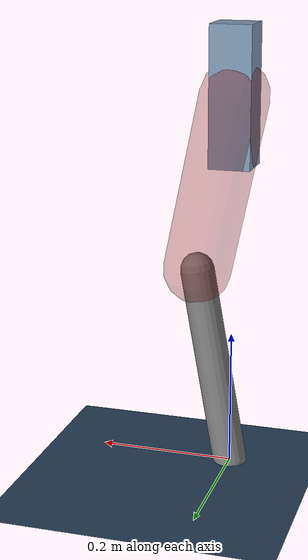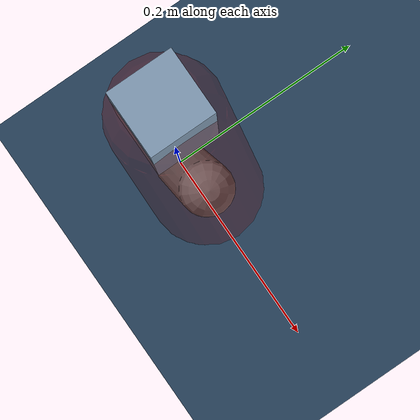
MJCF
<mujoco model="Hopper2D">
	<compiler inertiafromgeom="true" angle="radian" />
	<option timestep="0.001" integrator="implicit" cone="elliptic" solver="Newton" tolerance="1e-10" />

	<default>
		<geom contype="1" conaffinity="1" condim="3" friction="2 0.005 0.0001" solref="0.005 1" />
		<joint limited="true" damping="0.1" />
	</default>

	<asset>
		<texture name="skybox" type="skybox" builtin="gradient" rgb1=".4 .6 .8" rgb2="0 0 0" width="800" height="800" />
		<texture name="grid" type="2d" builtin="checker" rgb1=".1 .2 .3" rgb2=".2 .3 .4" width="300" height="300" mark="edge" markrgb=".2 .3 .4" />
		<material name="ground" texture="grid" texrepeat="1 1" texuniform="true" reflectance="0.1" />
		<material name="leg" rgba="0.5 0.6 0.7 1" />
	</asset>

	<worldbody>

		<geom name="floor" type="plane" size="5 5 0.25" material="ground" />

		<light directional="false" diffuse="0.8 0.8 0.8" specular="0.3 0.3 0.3" pos="0 0 2" dir="0 0 -1" />
		<light mode="targetbodycom" target="base" directional="false" diffuse="0.8 0.8 0.8" specular="0.3 0.3 0.3" pos="0 0 2" dir="0 0 -1" />

		<camera name="fixed" pos="0 -2 1" xyaxes="1 0 0 0 0 1" />
		<camera name="tracking" mode="trackcom" pos="0 -3 1" />

		<body name="root" pos="0 0 0.5514956517558898">
			<joint name="slide_x" type="slide" axis="1 0 0" range="-100 100" />
			<joint name="slide_z" type="slide" axis="0 0 1" range="0 10" />

			<body name="base" pos="0 0 0">
				<geom name="torso" type="box" size="0.03 0.03 0.1" mass="1.9090000000000003" material="leg" />

				<body name="link1" pos="0 0 0" euler="0 1.368018557961438 0">
					<joint type="hinge" axis="0 -1 0" pos="0 0 0" name="hinge1" limited="true" range="-3.14 3.14" stiffness="0" damping="0.1" />
					<geom name="thigh" type="capsule" fromto="0 0 0 0.2612701332572511 0 0" size="0.05" rgba="0.5 0 0 0.3" mass="0.8857023464688529" />

					<body name="link2" pos="0.2612701332572511 0 0" euler="0 0.378947342157234 0">
						<joint type="hinge" axis="0 -1 0" pos="0 0 0" name="hinge2" limited="true" range="-3.14 3.14" stiffness="0" damping="0.1" />
						<geom name="shank" type="capsule" fromto="0 0 0 0.30022551849863865 0 0" size="0.025" mass="0.48358041479891095" />

					</body>
				</body>
			</body>
		</body>
	</worldbody>

	<actuator>
		<motor name="torque1" joint="hinge1" ctrlrange="-40.060051678608126 40.060051678608126" ctrllimited="true" gear="1" />
		<motor name="torque2" joint="hinge2" ctrlrange="-21.21356341593628 21.21356341593628" ctrllimited="true" gear="1" />
	</actuator>
</mujoco>
